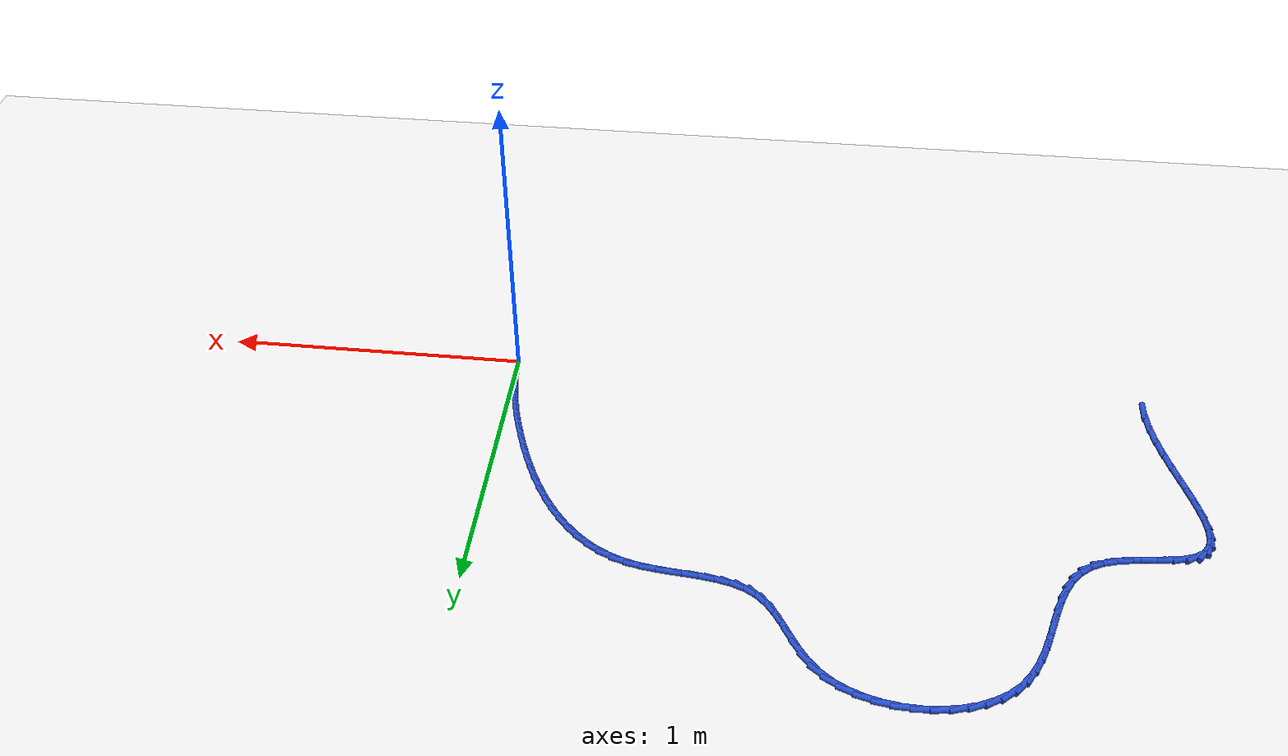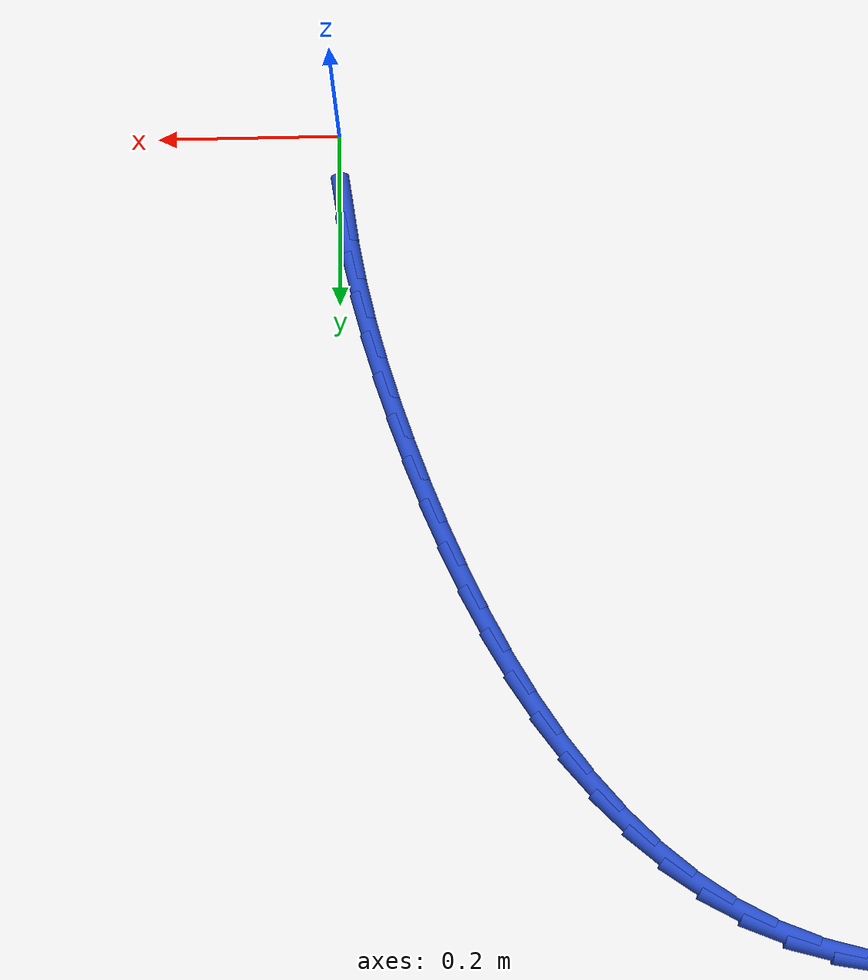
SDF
<sdf version="1.6">
 <world name="default">
  <model name="ground_plane">
   <static>1</static>
   <link name="link">
    <collision name="collision">
     <geometry><plane><normal>0 0 1</normal><size>100 100</size></plane></geometry>
     <surface><friction><ode><mu>100</mu><mu2>50</mu2></ode></friction></surface>
    </collision>
    <visual name="visual">
     <cast_shadows>0</cast_shadows>
     <geometry><plane><normal>0 0 1</normal><size>100 100</size></plane></geometry>
     <material>
      <script><uri>file://media/materials/scripts/gazebo.material</uri><name>Gazebo/WhiteGlow</name></script>
     </material>
    </visual>
   </link>
  </model>
  <model name="line">
   <link name="link_2">
    <pose>-0.005940966023274526 0.0924890745904151 0.01 0 1.57 -1.436435670266301</pose>
    <collision name="collision">
     <geometry><cylinder><radius>0.01</radius><length>0.08</length></cylinder></geometry>
    </collision>
    <visual name="visual">
     <material>
      <script><name>Gazebo/Blue</name><uri>file://media/materials/scripts/gazebo.material</uri></script>
     </material>
     <geometry><cylinder><radius>0.01</radius><length>0.08</length></cylinder></geometry>
    </visual>
   </link>
   <link name="link_3">
    <pose>-0.012134233433535868 0.13830571512713555 0.01 0 1.57 -1.3933267834648728</pose>
    <collision name="collision">
     <geometry><cylinder><radius>0.01</radius><length>0.08</length></cylinder></geometry>
    </collision>
    <visual name="visual">
     <material>
      <script><name>Gazebo/Blue</name><uri>file://media/materials/scripts/gazebo.material</uri></script>
     </material>
     <geometry><cylinder><radius>0.01</radius><length>0.08</length></cylinder></geometry>
    </visual>
   </link>
   <link name="link_4">
    <pose>-0.020326023642553544 0.18397894780960256 0.01 0 1.57 -1.3534551659874263</pose>
    <collision name="collision">
     <geometry><cylinder><radius>0.01</radius><length>0.08</length></cylinder></geometry>
    </collision>
    <visual name="visual">
     <material>
      <script><name>Gazebo/Blue</name><uri>file://media/materials/scripts/gazebo.material</uri></script>
     </material>
     <geometry><cylinder><radius>0.01</radius><length>0.08</length></cylinder></geometry>
    </visual>
   </link>
   <link name="link_5">
    <pose>-0.030403836550082778 0.22961516512636976 0.01 0 1.57 -1.3170866215379182</pose>
    <collision name="collision">
     <geometry><cylinder><radius>0.01</radius><length>0.08</length></cylinder></geometry>
    </collision>
    <visual name="visual">
     <material>
      <script><name>Gazebo/Blue</name><uri>file://media/materials/scripts/gazebo.material</uri></script>
     </material>
     <geometry><cylinder><radius>0.01</radius><length>0.08</length></cylinder></geometry>
    </visual>
   </link>
   <link name="link_6">
    <pose>-0.042255172055878795 0.27532075956599067 0.01 0 1.57 -1.2843870683193195</pose>
    <collision name="collision">
     <geometry><cylinder><radius>0.01</radius><length>0.08</length></cylinder></geometry>
    </collision>
    <visual name="visual">
     <material>
      <script><name>Gazebo/Blue</name><uri>file://media/materials/scripts/gazebo.material</uri></script>
     </material>
     <geometry><cylinder><radius>0.01</radius><length>0.08</length></cylinder></geometry>
    </visual>
   </link>
   <link name="link_7">
    <pose>-0.055767530059696785 0.32120212361701855 0.01 0 1.57 -1.255433673963761</pose>
    <collision name="collision">
     <geometry><cylinder><radius>0.01</radius><length>0.08</length></cylinder></geometry>
    </collision>
    <visual name="visual">
     <material>
      <script><name>Gazebo/Blue</name><uri>file://media/materials/scripts/gazebo.material</uri></script>
     </material>
     <geometry><cylinder><radius>0.01</radius><length>0.08</length></cylinder></geometry>
    </visual>
   </link>
   <link name="link_8">
    <pose>-0.07082841046129197 0.367365649768007 0.01 0 1.57 -1.2298542153299223</pose>
    <collision name="collision">
     <geometry><cylinder><radius>0.01</radius><length>0.08</length></cylinder></geometry>
    </collision>
    <visual name="visual">
     <material>
      <script><name>Gazebo/Blue</name><uri>file://media/materials/scripts/gazebo.material</uri></script>
     </material>
     <geometry><cylinder><radius>0.01</radius><length>0.08</length></cylinder></geometry>
    </visual>
   </link>
   <link name="link_9">
    <pose>-0.08733602795371681 0.41389255619519905 0.01 0 1.57 -1.2032316690330587</pose>
    <collision name="collision">
     <geometry><cylinder><radius>0.01</radius><length>0.08</length></cylinder></geometry>
    </collision>
    <visual name="visual">
     <material>
      <script><name>Gazebo/Blue</name><uri>file://media/materials/scripts/gazebo.material</uri></script>
     </material>
     <geometry><cylinder><radius>0.01</radius><length>0.08</length></cylinder></geometry>
    </visual>
   </link>
   <link name="link_10">
    <pose>-0.1053116979493797 0.4605748370208803 0.01 0 1.57 -1.1724911542365255</pose>
    <collision name="collision">
     <geometry><cylinder><radius>0.01</radius><length>0.08</length></cylinder></geometry>
    </collision>
    <visual name="visual">
     <material>
      <script><name>Gazebo/Blue</name><uri>file://media/materials/scripts/gazebo.material</uri></script>
     </material>
     <geometry><cylinder><radius>0.01</radius><length>0.08</length></cylinder></geometry>
    </visual>
   </link>
   <link name="link_11">
    <pose>-0.12485546845025954 0.5070195048428323 0.01 0 1.57 -1.137136139844849</pose>
    <collision name="collision">
     <geometry><cylinder><radius>0.01</radius><length>0.08</length></cylinder></geometry>
    </collision>
    <visual name="visual">
     <material>
      <script><name>Gazebo/Blue</name><uri>file://media/materials/scripts/gazebo.material</uri></script>
     </material>
     <geometry><cylinder><radius>0.01</radius><length>0.08</length></cylinder></geometry>
    </visual>
   </link>
   <link name="link_12">
    <pose>-0.14606866913526717 0.5528305609701929 0.01 0 1.57 -1.0966070510772625</pose>
    <collision name="collision">
     <geometry><cylinder><radius>0.01</radius><length>0.08</length></cylinder></geometry>
    </collision>
    <visual name="visual">
     <material>
      <script><name>Gazebo/Blue</name><uri>file://media/materials/scripts/gazebo.material</uri></script>
     </material>
     <geometry><cylinder><radius>0.01</radius><length>0.08</length></cylinder></geometry>
    </visual>
   </link>
   <link name="link_13">
    <pose>-0.16905262968331358 0.5976120067121005 0.01 0 1.57 -1.0502379953094667</pose>
    <collision name="collision">
     <geometry><cylinder><radius>0.01</radius><length>0.08</length></cylinder></geometry>
    </collision>
    <visual name="visual">
     <material>
      <script><name>Gazebo/Blue</name><uri>file://media/materials/scripts/gazebo.material</uri></script>
     </material>
     <geometry><cylinder><radius>0.01</radius><length>0.08</length></cylinder></geometry>
    </visual>
   </link>
   <link name="link_14">
    <pose>-0.19390867977330972 0.6409678433776929 0.01 0 1.57 -0.9972661018475963</pose>
    <collision name="collision">
     <geometry><cylinder><radius>0.01</radius><length>0.08</length></cylinder></geometry>
    </collision>
    <visual name="visual">
     <material>
      <script><name>Gazebo/Blue</name><uri>file://media/materials/scripts/gazebo.material</uri></script>
     </material>
     <geometry><cylinder><radius>0.01</radius><length>0.08</length></cylinder></geometry>
    </visual>
   </link>
   <link name="link_15">
    <pose>-0.22073814908416645 0.6825020722761085 0.01 0 1.57 -0.9368571966738959</pose>
    <collision name="collision">
     <geometry><cylinder><radius>0.01</radius><length>0.08</length></cylinder></geometry>
    </collision>
    <visual name="visual">
     <material>
      <script><name>Gazebo/Blue</name><uri>file://media/materials/scripts/gazebo.material</uri></script>
     </material>
     <geometry><cylinder><radius>0.01</radius><length>0.08</length></cylinder></geometry>
    </visual>
   </link>
   <link name="link_16">
    <pose>-0.24964236729479475 0.7218186947164852 0.01 0 1.57 -0.8681600796457231</pose>
    <collision name="collision">
     <geometry><cylinder><radius>0.01</radius><length>0.08</length></cylinder></geometry>
    </collision>
    <visual name="visual">
     <material>
      <script><name>Gazebo/Blue</name><uri>file://media/materials/scripts/gazebo.material</uri></script>
     </material>
     <geometry><cylinder><radius>0.01</radius><length>0.08</length></cylinder></geometry>
    </visual>
   </link>
   <link name="link_17">
    <pose>-0.2807226640841055 0.7585217120079611 0.01 0 1.57 -0.7904048748026672</pose>
    <collision name="collision">
     <geometry><cylinder><radius>0.01</radius><length>0.08</length></cylinder></geometry>
    </collision>
    <visual name="visual">
     <material>
      <script><name>Gazebo/Blue</name><uri>file://media/materials/scripts/gazebo.material</uri></script>
     </material>
     <geometry><cylinder><radius>0.01</radius><length>0.08</length></cylinder></geometry>
    </visual>
   </link>
   <link name="link_18">
    <pose>-0.3140803691310096 0.792215125459675 0.01 0 1.57 -0.7030600368776598</pose>
    <collision name="collision">
     <geometry><cylinder><radius>0.01</radius><length>0.08</length></cylinder></geometry>
    </collision>
    <visual name="visual">
     <material>
      <script><name>Gazebo/Blue</name><uri>file://media/materials/scripts/gazebo.material</uri></script>
     </material>
     <geometry><cylinder><radius>0.01</radius><length>0.08</length></cylinder></geometry>
    </visual>
   </link>
   <link name="link_19">
    <pose>-0.34981681211441806 0.822502936380764 0.01 0 1.57 -0.6060508326332041</pose>
    <collision name="collision">
     <geometry><cylinder><radius>0.01</radius><length>0.08</length></cylinder></geometry>
    </collision>
    <visual name="visual">
     <material>
      <script><name>Gazebo/Blue</name><uri>file://media/materials/scripts/gazebo.material</uri></script>
     </material>
     <geometry><cylinder><radius>0.01</radius><length>0.08</length></cylinder></geometry>
    </visual>
   </link>
   <link name="link_20">
    <pose>-0.3880333227132417 0.8489891460803671 0.01 0 1.57 -0.5000115362658203</pose>
    <collision name="collision">
     <geometry><cylinder><radius>0.01</radius><length>0.08</length></cylinder></geometry>
    </collision>
    <visual name="visual">
     <material>
      <script><name>Gazebo/Blue</name><uri>file://media/materials/scripts/gazebo.material</uri></script>
     </material>
     <geometry><cylinder><radius>0.01</radius><length>0.08</length></cylinder></geometry>
    </visual>
   </link>
   <link name="link_21">
    <pose>-0.42883123060639156 0.871277755867622 0.01 0 1.57 -0.3864945449638289</pose>
    <collision name="collision">
     <geometry><cylinder><radius>0.01</radius><length>0.08</length></cylinder></geometry>
    </collision>
    <visual name="visual">
     <material>
      <script><name>Gazebo/Blue</name><uri>file://media/materials/scripts/gazebo.material</uri></script>
     </material>
     <geometry><cylinder><radius>0.01</radius><length>0.08</length></cylinder></geometry>
    </visual>
   </link>
   <link name="link_22">
    <pose>-0.47231186547277854 0.888972767051667 0.01 0 1.57 -0.2700500714416034</pose>
    <collision name="collision">
     <geometry><cylinder><radius>0.01</radius><length>0.08</length></cylinder></geometry>
    </collision>
    <visual name="visual">
     <material>
      <script><name>Gazebo/Blue</name><uri>file://media/materials/scripts/gazebo.material</uri></script>
     </material>
     <geometry><cylinder><radius>0.01</radius><length>0.08</length></cylinder></geometry>
    </visual>
   </link>
   <link name="link_23">
    <pose>-0.5185269437244302 0.9017656572932711 0.01 0 1.57 -0.17718210906850276</pose>
    <collision name="collision">
     <geometry><cylinder><radius>0.01</radius><length>0.08</length></cylinder></geometry>
    </collision>
    <visual name="visual">
     <material>
      <script><name>Gazebo/Blue</name><uri>file://media/materials/scripts/gazebo.material</uri></script>
     </material>
     <geometry><cylinder><radius>0.01</radius><length>0.08</length></cylinder></geometry>
    </visual>
   </link>
   <link name="link_24">
    <pose>-0.5669145010639884 0.9104299243034026 0.01 0 1.57 -0.12120529322183834</pose>
    <collision name="collision">
     <geometry><cylinder><radius>0.01</radius><length>0.08</length></cylinder></geometry>
    </collision>
    <visual name="visual">
     <material>
      <script><name>Gazebo/Blue</name><uri>file://media/materials/scripts/gazebo.material</uri></script>
     </material>
     <geometry><cylinder><radius>0.01</radius><length>0.08</length></cylinder></geometry>
    </visual>
   </link>
   <link name="link_25">
    <pose>-0.6164983800525924 0.9164693564423926 0.01 0 1.57 -0.09872338030837678</pose>
    <collision name="collision">
     <geometry><cylinder><radius>0.01</radius><length>0.08</length></cylinder></geometry>
    </collision>
    <visual name="visual">
     <material>
      <script><name>Gazebo/Blue</name><uri>file://media/materials/scripts/gazebo.material</uri></script>
     </material>
     <geometry><cylinder><radius>0.01</radius><length>0.08</length></cylinder></geometry>
    </visual>
   </link>
   <link name="link_26">
    <pose>-0.6662946507593727 0.9214014462526762 0.01 0 1.57 -0.10854202803596015</pose>
    <collision name="collision">
     <geometry><cylinder><radius>0.01</radius><length>0.08</length></cylinder></geometry>
    </collision>
    <visual name="visual">
     <material>
      <script><name>Gazebo/Blue</name><uri>file://media/materials/scripts/gazebo.material</uri></script>
     </material>
     <geometry><cylinder><radius>0.01</radius><length>0.08</length></cylinder></geometry>
    </visual>
   </link>
   <link name="link_27">
    <pose>-0.7153193832534586 0.9267436862766889 0.01 0 1.57 -0.15260155313605617</pose>
    <collision name="collision">
     <geometry><cylinder><radius>0.01</radius><length>0.08</length></cylinder></geometry>
    </collision>
    <visual name="visual">
     <material>
      <script><name>Gazebo/Blue</name><uri>file://media/materials/scripts/gazebo.material</uri></script>
     </material>
     <geometry><cylinder><radius>0.01</radius><length>0.08</length></cylinder></geometry>
    </visual>
   </link>
   <link name="link_28">
    <pose>-0.7625886476039796 0.9340135690568666 0.01 0 1.57 -0.2361362609698178</pose>
    <collision name="collision">
     <geometry><cylinder><radius>0.01</radius><length>0.08</length></cylinder></geometry>
    </collision>
    <visual name="visual">
     <material>
      <script><name>Gazebo/Blue</name><uri>file://media/materials/scripts/gazebo.material</uri></script>
     </material>
     <geometry><cylinder><radius>0.01</radius><length>0.08</length></cylinder></geometry>
    </visual>
   </link>
   <link name="link_29">
    <pose>-0.8071185138800653 0.9447285871356441 0.01 0 1.57 -0.3668071000280431</pose>
    <collision name="collision">
     <geometry><cylinder><radius>0.01</radius><length>0.08</length></cylinder></geometry>
    </collision>
    <visual name="visual">
     <material>
      <script><name>Gazebo/Blue</name><uri>file://media/materials/scripts/gazebo.material</uri></script>
     </material>
     <geometry><cylinder><radius>0.01</radius><length>0.08</length></cylinder></geometry>
    </visual>
   </link>
   <link name="link_30">
    <pose>-0.8479250521508455 0.9604062330554574 0.01 0 1.57 -0.5505053773676107</pose>
    <collision name="collision">
     <geometry><cylinder><radius>0.01</radius><length>0.08</length></cylinder></geometry>
    </collision>
    <visual name="visual">
     <material>
      <script><name>Gazebo/Blue</name><uri>file://media/materials/scripts/gazebo.material</uri></script>
     </material>
     <geometry><cylinder><radius>0.01</radius><length>0.08</length></cylinder></geometry>
    </visual>
   </link>
   <link name="link_31">
    <pose>-0.8840243324854496 0.9825639993587416 0.01 0 1.57 -0.7664154667194171</pose>
    <collision name="collision">
     <geometry><cylinder><radius>0.01</radius><length>0.08</length></cylinder></geometry>
    </collision>
    <visual name="visual">
     <material>
      <script><name>Gazebo/Blue</name><uri>file://media/materials/scripts/gazebo.material</uri></script>
     </material>
     <geometry><cylinder><radius>0.01</radius><length>0.08</length></cylinder></geometry>
    </visual>
   </link>
   <link name="link_32">
    <pose>-0.9148237621297316 1.0122157644552476 0.01 0 1.57 -0.9291367369747572</pose>
    <collision name="collision">
     <geometry><cylinder><radius>0.01</radius><length>0.08</length></cylinder></geometry>
    </collision>
    <visual name="visual">
     <material>
      <script><name>Gazebo/Blue</name><uri>file://media/materials/scripts/gazebo.material</uri></script>
     </material>
     <geometry><cylinder><radius>0.01</radius><length>0.08</length></cylinder></geometry>
    </visual>
   </link>
   <link name="link_33">
    <pose>-0.9415676746747503 1.0480114553512532 0.01 0 1.57 -1.0206057435527836</pose>
    <collision name="collision">
     <geometry><cylinder><radius>0.01</radius><length>0.08</length></cylinder></geometry>
    </collision>
    <visual name="visual">
     <material>
      <script><name>Gazebo/Blue</name><uri>file://media/materials/scripts/gazebo.material</uri></script>
     </material>
     <geometry><cylinder><radius>0.01</radius><length>0.08</length></cylinder></geometry>
    </visual>
   </link>
   <link name="link_34">
    <pose>-0.9660389113272696 1.087907990409961 0.01 0 1.57 -1.0515129740956561</pose>
    <collision name="collision">
     <geometry><cylinder><radius>0.01</radius><length>0.08</length></cylinder></geometry>
    </collision>
    <visual name="visual">
     <material>
      <script><name>Gazebo/Blue</name><uri>file://media/materials/scripts/gazebo.material</uri></script>
     </material>
     <geometry><cylinder><radius>0.01</radius><length>0.08</length></cylinder></geometry>
    </visual>
   </link>
   <link name="link_35">
    <pose>-0.9900203828883766 1.1298621984332236 0.01 0 1.57 -1.028742210296648</pose>
    <collision name="collision">
     <geometry><cylinder><radius>0.01</radius><length>0.08</length></cylinder></geometry>
    </collision>
    <visual name="visual">
     <material>
      <script><name>Gazebo/Blue</name><uri>file://media/materials/scripts/gazebo.material</uri></script>
     </material>
     <geometry><cylinder><radius>0.01</radius><length>0.08</length></cylinder></geometry>
    </visual>
   </link>
   <link name="link_36">
    <pose>-1.0152950001591592 1.1718309082228957 0.01 0 1.57 -0.9535028868978923</pose>
    <collision name="collision">
     <geometry><cylinder><radius>0.01</radius><length>0.08</length></cylinder></geometry>
    </collision>
    <visual name="visual">
     <material>
      <script><name>Gazebo/Blue</name><uri>file://media/materials/scripts/gazebo.material</uri></script>
     </material>
     <geometry><cylinder><radius>0.01</radius><length>0.08</length></cylinder></geometry>
    </visual>
   </link>
   <link name="link_37">
    <pose>-1.0436456739407047 1.2117709485808306 0.01 0 1.57 -0.8239366933005705</pose>
    <collision name="collision">
     <geometry><cylinder><radius>0.01</radius><length>0.08</length></cylinder></geometry>
    </collision>
    <visual name="visual">
     <material>
      <script><name>Gazebo/Blue</name><uri>file://media/materials/scripts/gazebo.material</uri></script>
     </material>
     <geometry><cylinder><radius>0.01</radius><length>0.08</length></cylinder></geometry>
    </visual>
   </link>
   <link name="link_38">
    <pose>-1.0768524610542503 1.2476411812154706 0.01 0 1.57 -0.6598890937508796</pose>
    <collision name="collision">
     <geometry><cylinder><radius>0.01</radius><length>0.08</length></cylinder></geometry>
    </collision>
    <visual name="visual">
     <material>
      <script><name>Gazebo/Blue</name><uri>file://media/materials/scripts/gazebo.material</uri></script>
     </material>
     <geometry><cylinder><radius>0.01</radius><length>0.08</length></cylinder></geometry>
    </visual>
   </link>
   <link name="link_39">
    <pose>-1.1159186929473652 1.2779537338752536 0.01 0 1.57 -0.5082415198840071</pose>
    <collision name="collision">
     <geometry><cylinder><radius>0.01</radius><length>0.08</length></cylinder></geometry>
    </collision>
    <visual name="visual">
     <material>
      <script><name>Gazebo/Blue</name><uri>file://media/materials/scripts/gazebo.material</uri></script>
     </material>
     <geometry><cylinder><radius>0.01</radius><length>0.08</length></cylinder></geometry>
    </visual>
   </link>
   <link name="link_40">
    <pose>-1.1600216921079205 1.302521411202123 0.01 0 1.57 -0.37331695636103357</pose>
    <collision name="collision">
     <geometry><cylinder><radius>0.01</radius><length>0.08</length></cylinder></geometry>
    </collision>
    <visual name="visual">
     <material>
      <script><name>Gazebo/Blue</name><uri>file://media/materials/scripts/gazebo.material</uri></script>
     </material>
     <geometry><cylinder><radius>0.01</radius><length>0.08</length></cylinder></geometry>
    </visual>
   </link>
   <link name="link_41">
    <pose>-1.208076617290044 1.3213437586034407 0.01 0 1.57 -0.2513644970746795</pose>
    <collision name="collision">
     <geometry><cylinder><radius>0.01</radius><length>0.08</length></cylinder></geometry>
    </collision>
    <visual name="visual">
     <material>
      <script><name>Gazebo/Blue</name><uri>file://media/materials/scripts/gazebo.material</uri></script>
     </material>
     <geometry><cylinder><radius>0.01</radius><length>0.08</length></cylinder></geometry>
    </visual>
   </link>
   <link name="link_42">
    <pose>-1.2589986272478628 1.3344203214865673 0.01 0 1.57 -0.13819753733453533</pose>
    <collision name="collision">
     <geometry><cylinder><radius>0.01</radius><length>0.08</length></cylinder></geometry>
    </collision>
    <visual name="visual">
     <material>
      <script><name>Gazebo/Blue</name><uri>file://media/materials/scripts/gazebo.material</uri></script>
     </material>
     <geometry><cylinder><radius>0.01</radius><length>0.08</length></cylinder></geometry>
    </visual>
   </link>
   <link name="link_43">
    <pose>-1.3117028807355051 1.3417506452588648 0.01 0 1.57 -0.02964638574633757</pose>
    <collision name="collision">
     <geometry><cylinder><radius>0.01</radius><length>0.08</length></cylinder></geometry>
    </collision>
    <visual name="visual">
     <material>
      <script><name>Gazebo/Blue</name><uri>file://media/materials/scripts/gazebo.material</uri></script>
     </material>
     <geometry><cylinder><radius>0.01</radius><length>0.08</length></cylinder></geometry>
    </visual>
   </link>
   <link name="link_44">
    <pose>-1.3651045365070988 1.3433342753276944 0.01 0 1.57 0.07837500926084524</pose>
    <collision name="collision">
     <geometry><cylinder><radius>0.01</radius><length>0.08</length></cylinder></geometry>
    </collision>
    <visual name="visual">
     <material>
      <script><name>Gazebo/Blue</name><uri>file://media/materials/scripts/gazebo.material</uri></script>
     </material>
     <geometry><cylinder><radius>0.01</radius><length>0.08</length></cylinder></geometry>
    </visual>
   </link>
   <link name="link_45">
    <pose>-1.4181187533167712 1.3391707571004179 0.01 0 1.57 0.1899735114983352</pose>
    <collision name="collision">
     <geometry><cylinder><radius>0.01</radius><length>0.08</length></cylinder></geometry>
    </collision>
    <visual name="visual">
     <material>
      <script><name>Gazebo/Blue</name><uri>file://media/materials/scripts/gazebo.material</uri></script>
     </material>
     <geometry><cylinder><radius>0.01</radius><length>0.08</length></cylinder></geometry>
    </visual>
   </link>
   <link name="link_46">
    <pose>-1.4696606899186506 1.3292596359843967 0.01 0 1.57 0.30940732407456734</pose>
    <collision name="collision">
     <geometry><cylinder><radius>0.01</radius><length>0.08</length></cylinder></geometry>
    </collision>
    <visual name="visual">
     <material>
      <script><name>Gazebo/Blue</name><uri>file://media/materials/scripts/gazebo.material</uri></script>
     </material>
     <geometry><cylinder><radius>0.01</radius><length>0.08</length></cylinder></geometry>
    </visual>
   </link>
   <link name="link_47">
    <pose>-1.518645505066864 1.3136004573869922 0.01 0 1.57 0.4411035251607573</pose>
    <collision name="collision">
     <geometry><cylinder><radius>0.01</radius><length>0.08</length></cylinder></geometry>
    </collision>
    <visual name="visual">
     <material>
      <script><name>Gazebo/Blue</name><uri>file://media/materials/scripts/gazebo.material</uri></script>
     </material>
     <geometry><cylinder><radius>0.01</radius><length>0.08</length></cylinder></geometry>
    </visual>
   </link>
   <link name="link_48">
    <pose>-1.5639883575155396 1.2921927667155657 0.01 0 1.57 0.5893529265007421</pose>
    <collision name="collision">
     <geometry><cylinder><radius>0.01</radius><length>0.08</length></cylinder></geometry>
    </collision>
    <visual name="visual">
     <material>
      <script><name>Gazebo/Blue</name><uri>file://media/materials/scripts/gazebo.material</uri></script>
     </material>
     <geometry><cylinder><radius>0.01</radius><length>0.08</length></cylinder></geometry>
    </visual>
   </link>
   <link name="link_49">
    <pose>-1.604604406018804 1.2650361093774787 0.01 0 1.57 0.7573602692474132</pose>
    <collision name="collision">
     <geometry><cylinder><radius>0.01</radius><length>0.08</length></cylinder></geometry>
    </collision>
    <visual name="visual">
     <material>
      <script><name>Gazebo/Blue</name><uri>file://media/materials/scripts/gazebo.material</uri></script>
     </material>
     <geometry><cylinder><radius>0.01</radius><length>0.08</length></cylinder></geometry>
    </visual>
   </link>
   <link name="link_50">
    <pose>-1.6394092319172884 1.232130246243419 0.01 0 1.57 0.933192259167531</pose>
    <collision name="collision">
     <geometry><cylinder><radius>0.01</radius><length>0.08</length></cylinder></geometry>
    </collision>
    <visual name="visual">
     <material>
      <script><name>Gazebo/Blue</name><uri>file://media/materials/scripts/gazebo.material</uri></script>
     </material>
     <geometry><cylinder><radius>0.01</radius><length>0.08</length></cylinder></geometry>
    </visual>
   </link>
   <link name="link_51">
    <pose>-1.66784659632492 1.1937442401378657 0.01 0 1.57 1.0763899878214525</pose>
    <collision name="collision">
     <geometry><cylinder><radius>0.01</radius><length>0.08</length></cylinder></geometry>
    </collision>
    <visual name="visual">
     <material>
      <script><name>Gazebo/Blue</name><uri>file://media/materials/scripts/gazebo.material</uri></script>
     </material>
     <geometry><cylinder><radius>0.01</radius><length>0.08</length></cylinder></geometry>
    </visual>
   </link>
   <link name="link_52">
    <pose>-1.6909195380726676 1.1509421796642714 0.01 0 1.57 1.1791969337913202</pose>
    <collision name="collision">
     <geometry><cylinder><radius>0.01</radius><length>0.08</length></cylinder></geometry>
    </collision>
    <visual name="visual">
     <material>
      <script><name>Gazebo/Blue</name><uri>file://media/materials/scripts/gazebo.material</uri></script>
     </material>
     <geometry><cylinder><radius>0.01</radius><length>0.08</length></cylinder></geometry>
    </visual>
   </link>
   <link name="link_53">
    <pose>-1.7099174394261816 1.104934150774555 0.01 0 1.57 1.2450962072886174</pose>
    <collision name="collision">
     <geometry><cylinder><radius>0.01</radius><length>0.08</length></cylinder></geometry>
    </collision>
    <visual name="visual">
     <material>
      <script><name>Gazebo/Blue</name><uri>file://media/materials/scripts/gazebo.material</uri></script>
     </material>
     <geometry><cylinder><radius>0.01</radius><length>0.08</length></cylinder></geometry>
    </visual>
   </link>
   <link name="link_54">
    <pose>-1.7261296826511143 1.0569302394206368 0.01 0 1.57 1.2778536627604544</pose>
    <collision name="collision">
     <geometry><cylinder><radius>0.01</radius><length>0.08</length></cylinder></geometry>
    </collision>
    <visual name="visual">
     <material>
      <script><name>Gazebo/Blue</name><uri>file://media/materials/scripts/gazebo.material</uri></script>
     </material>
     <geometry><cylinder><radius>0.01</radius><length>0.08</length></cylinder></geometry>
    </visual>
   </link>
   <link name="link_55">
    <pose>-1.7408456500131162 1.008140531554436 0.01 0 1.57 1.279349998605101</pose>
    <collision name="collision">
     <geometry><cylinder><radius>0.01</radius><length>0.08</length></cylinder></geometry>
    </collision>
    <visual name="visual">
     <material>
      <script><name>Gazebo/Blue</name><uri>file://media/materials/scripts/gazebo.material</uri></script>
     </material>
     <geometry><cylinder><radius>0.01</radius><length>0.08</length></cylinder></geometry>
    </visual>
   </link>
   <link name="link_56">
    <pose>-1.7553547237778397 0.959775113127872 0.01 0 1.57 1.2487656148121244</pose>
    <collision name="collision">
     <geometry><cylinder><radius>0.01</radius><length>0.08</length></cylinder></geometry>
    </collision>
    <visual name="visual">
     <material>
      <script><name>Gazebo/Blue</name><uri>file://media/materials/scripts/gazebo.material</uri></script>
     </material>
     <geometry><cylinder><radius>0.01</radius><length>0.08</length></cylinder></geometry>
    </visual>
   </link>
   <link name="link_57">
    <pose>-1.770946286210935 0.9130440700928651 0.01 0 1.57 1.1822857140928773</pose>
    <collision name="collision">
     <geometry><cylinder><radius>0.01</radius><length>0.08</length></cylinder></geometry>
    </collision>
    <visual name="visual">
     <material>
      <script><name>Gazebo/Blue</name><uri>file://media/materials/scripts/gazebo.material</uri></script>
     </material>
     <geometry><cylinder><radius>0.01</radius><length>0.08</length></cylinder></geometry>
    </visual>
   </link>
   <link name="link_58">
    <pose>-1.7889097195780548 0.8691574884013341 0.01 0 1.57 1.0734229308855177</pose>
    <collision name="collision">
     <geometry><cylinder><radius>0.01</radius><length>0.08</length></cylinder></geometry>
    </collision>
    <visual name="visual">
     <material>
      <script><name>Gazebo/Blue</name><uri>file://media/materials/scripts/gazebo.material</uri></script>
     </material>
     <geometry><cylinder><radius>0.01</radius><length>0.08</length></cylinder></geometry>
    </visual>
   </link>
   <link name="link_59">
    <pose>-1.8105344061448496 0.8293254540051996 0.01 0 1.57 0.9153731338447192</pose>
    <collision name="collision">
     <geometry><cylinder><radius>0.01</radius><length>0.08</length></cylinder></geometry>
    </collision>
    <visual name="visual">
     <material>
      <script><name>Gazebo/Blue</name><uri>file://media/materials/scripts/gazebo.material</uri></script>
     </material>
     <geometry><cylinder><radius>0.01</radius><length>0.08</length></cylinder></geometry>
    </visual>
   </link>
   <link name="link_60">
    <pose>-1.837109728176971 0.7947580528563803 0.01 0 1.57 0.7080154581325362</pose>
    <collision name="collision">
     <geometry><cylinder><radius>0.01</radius><length>0.08</length></cylinder></geometry>
    </collision>
    <visual name="visual">
     <material>
      <script><name>Gazebo/Blue</name><uri>file://media/materials/scripts/gazebo.material</uri></script>
     </material>
     <geometry><cylinder><radius>0.01</radius><length>0.08</length></cylinder></geometry>
    </visual>
   </link>
   <link name="link_61">
    <pose>-1.8699250679400703 0.7666653709067959 0.01 0 1.57 0.47150130983645266</pose>
    <collision name="collision">
     <geometry><cylinder><radius>0.01</radius><length>0.08</length></cylinder></geometry>
    </collision>
    <visual name="visual">
     <material>
      <script><name>Gazebo/Blue</name><uri>file://media/materials/scripts/gazebo.material</uri></script>
     </material>
     <geometry><cylinder><radius>0.01</radius><length>0.08</length></cylinder></geometry>
    </visual>
   </link>
   <link name="link_62">
    <pose>-1.9101500622862586 0.7461564149082507 0.01 0 1.57 0.28336937954209</pose>
    <collision name="collision">
     <geometry><cylinder><radius>0.01</radius><length>0.08</length></cylinder></geometry>
    </collision>
    <visual name="visual">
     <material>
      <script><name>Gazebo/Blue</name><uri>file://media/materials/scripts/gazebo.material</uri></script>
     </material>
     <geometry><cylinder><radius>0.01</radius><length>0.08</length></cylinder></geometry>
    </visual>
   </link>
   <link name="link_63">
    <pose>-1.9568440498897803 0.732558851972728 0.01 0 1.57 0.1743750322196133</pose>
    <collision name="collision">
     <geometry><cylinder><radius>0.01</radius><length>0.08</length></cylinder></geometry>
    </collision>
    <visual name="visual">
     <material>
      <script><name>Gazebo/Blue</name><uri>file://media/materials/scripts/gazebo.material</uri></script>
     </material>
     <geometry><cylinder><radius>0.01</radius><length>0.08</length></cylinder></geometry>
    </visual>
   </link>
   <link name="link_64">
    <pose>-2.007261770244827 0.7236770554487428 0.01 0 1.57 0.12422981429136444</pose>
    <collision name="collision">
     <geometry><cylinder><radius>0.01</radius><length>0.08</length></cylinder></geometry>
    </collision>
    <visual name="visual">
     <material>
      <script><name>Gazebo/Blue</name><uri>file://media/materials/scripts/gazebo.material</uri></script>
     </material>
     <geometry><cylinder><radius>0.01</radius><length>0.08</length></cylinder></geometry>
    </visual>
   </link>
   <link name="link_65">
    <pose>-2.0585998269771535 0.717266325180396 0.01 0 1.57 0.12440456002004267</pose>
    <collision name="collision">
     <geometry><cylinder><radius>0.01</radius><length>0.08</length></cylinder></geometry>
    </collision>
    <visual name="visual">
     <material>
      <script><name>Gazebo/Blue</name><uri>file://media/materials/scripts/gazebo.material</uri></script>
     </material>
     <geometry><cylinder><radius>0.01</radius><length>0.08</length></cylinder></geometry>
    </visual>
   </link>
   <link name="link_66">
    <pose>-2.1080548237125134 0.7110819610117876 0.01 0 1.57 0.18121458184681508</pose>
    <collision name="collision">
     <geometry><cylinder><radius>0.01</radius><length>0.08</length></cylinder></geometry>
    </collision>
    <visual name="visual">
     <material>
      <script><name>Gazebo/Blue</name><uri>file://media/materials/scripts/gazebo.material</uri></script>
     </material>
     <geometry><cylinder><radius>0.01</radius><length>0.08</length></cylinder></geometry>
    </visual>
   </link>
   <link name="link_67">
    <pose>-2.1528233640766596 0.7028792627870186 0.01 0 1.57 0.32270395700530535</pose>
    <collision name="collision">
     <geometry><cylinder><radius>0.01</radius><length>0.08</length></cylinder></geometry>
    </collision>
    <visual name="visual">
     <material>
      <script><name>Gazebo/Blue</name><uri>file://media/materials/scripts/gazebo.material</uri></script>
     </material>
     <geometry><cylinder><radius>0.01</radius><length>0.08</length></cylinder></geometry>
    </visual>
   </link>
   <link name="link_68">
    <pose>-2.190102051695347 0.690413530350189 0.01 0 1.57 0.6031887446301488</pose>
    <collision name="collision">
     <geometry><cylinder><radius>0.01</radius><length>0.08</length></cylinder></geometry>
    </collision>
    <visual name="visual">
     <material>
      <script><name>Gazebo/Blue</name><uri>file://media/materials/scripts/gazebo.material</uri></script>
     </material>
     <geometry><cylinder><radius>0.01</radius><length>0.08</length></cylinder></geometry>
    </visual>
   </link>
   <link name="link_69">
    <pose>-2.21736404856263 0.671634696112288 0.01 0 1.57 0.9758646201783951</pose>
    <collision name="collision">
     <geometry><cylinder><radius>0.01</radius><length>0.08</length></cylinder></geometry>
    </collision>
    <visual name="visual">
     <material>
      <script><name>Gazebo/Blue</name><uri>file://media/materials/scripts/gazebo.material</uri></script>
     </material>
     <geometry><cylinder><radius>0.01</radius><length>0.08</length></cylinder></geometry>
    </visual>
   </link>
   <link name="link_70">
    <pose>-2.234554395773822 0.6462323186524457 0.01 0 1.57 1.3106225587837579</pose>
    <collision name="collision">
     <geometry><cylinder><radius>0.01</radius><length>0.08</length></cylinder></geometry>
    </collision>
    <visual name="visual">
     <material>
      <script><name>Gazebo/Blue</name><uri>file://media/materials/scripts/gazebo.material</uri></script>
     </material>
     <geometry><cylinder><radius>0.01</radius><length>0.08</length></cylinder></geometry>
    </visual>
   </link>
   <link name="link_71">
    <pose>-2.242918887977702 0.6148113835699703 0.01 0 1.57 1.5491834731092846</pose>
    <collision name="collision">
     <geometry><cylinder><radius>0.01</radius><length>0.08</length></cylinder></geometry>
    </collision>
    <visual name="visual">
     <material>
      <script><name>Gazebo/Blue</name><uri>file://media/materials/scripts/gazebo.material</uri></script>
     </material>
     <geometry><cylinder><radius>0.01</radius><length>0.08</length></cylinder></geometry>
    </visual>
   </link>
   <link name="link_72">
    <pose>-2.2437149340850526 0.5779850501948754 0.01 0 1.57 -1.4390511402880308</pose>
    <collision name="collision">
     <geometry><cylinder><radius>0.01</radius><length>0.08</length></cylinder></geometry>
    </collision>
    <visual name="visual">
     <material>
      <script><name>Gazebo/Blue</name><uri>file://media/materials/scripts/gazebo.material</uri></script>
     </material>
     <geometry><cylinder><radius>0.01</radius><length>0.08</length></cylinder></geometry>
    </visual>
   </link>
   <link name="link_73">
    <pose>-2.238199943006655 0.5363664778571741 0.01 0 1.57 -1.343998920859879</pose>
    <collision name="collision">
     <geometry><cylinder><radius>0.01</radius><length>0.08</length></cylinder></geometry>
    </collision>
    <visual name="visual">
     <material>
      <script><name>Gazebo/Blue</name><uri>file://media/materials/scripts/gazebo.material</uri></script>
     </material>
     <geometry><cylinder><radius>0.01</radius><length>0.08</length></cylinder></geometry>
    </visual>
   </link>
   <link name="link_74">
    <pose>-2.2276313236532923 0.49056882588687967 0.01 0 1.57 -1.2876159957766162</pose>
    <collision name="collision">
     <geometry><cylinder><radius>0.01</radius><length>0.08</length></cylinder></geometry>
    </collision>
    <visual name="visual">
     <material>
      <script><name>Gazebo/Blue</name><uri>file://media/materials/scripts/gazebo.material</uri></script>
     </material>
     <geometry><cylinder><radius>0.01</radius><length>0.08</length></cylinder></geometry>
    </visual>
   </link>
   <link name="link_75">
    <pose>-2.213266484935749 0.4412052536140056 0.01 0 1.57 -1.2582796846488298</pose>
    <collision name="collision">
     <geometry><cylinder><radius>0.01</radius><length>0.08</length></cylinder></geometry>
    </collision>
    <visual name="visual">
     <material>
      <script><name>Gazebo/Blue</name><uri>file://media/materials/scripts/gazebo.material</uri></script>
     </material>
     <geometry><cylinder><radius>0.01</radius><length>0.08</length></cylinder></geometry>
    </visual>
   </link>
   <link name="link_76">
    <pose>-2.196362835764805 0.38888892036856443 0.01 0 1.57 -1.2495990590147343</pose>
    <collision name="collision">
     <geometry><cylinder><radius>0.01</radius><length>0.08</length></cylinder></geometry>
    </collision>
    <visual name="visual">
     <material>
      <script><name>Gazebo/Blue</name><uri>file://media/materials/scripts/gazebo.material</uri></script>
     </material>
     <geometry><cylinder><radius>0.01</radius><length>0.08</length></cylinder></geometry>
    </visual>
   </link>
   <link name="link_77">
    <pose>-2.1781777850512465 0.3342329854805706 0.01 0 1.57 -1.2584140028050417</pose>
    <collision name="collision">
     <geometry><cylinder><radius>0.01</radius><length>0.08</length></cylinder></geometry>
    </collision>
    <visual name="visual">
     <material>
      <script><name>Gazebo/Blue</name><uri>file://media/materials/scripts/gazebo.material</uri></script>
     </material>
     <geometry><cylinder><radius>0.01</radius><length>0.08</length></cylinder></geometry>
    </visual>
   </link>
   <link name="link_78">
    <pose>-2.159968741705854 0.2778506082800363 0.01 0 1.57 -1.2837024730754738</pose>
    <collision name="collision">
     <geometry><cylinder><radius>0.01</radius><length>0.08</length></cylinder></geometry>
    </collision>
    <visual name="visual">
     <material>
      <script><name>Gazebo/Blue</name><uri>file://media/materials/scripts/gazebo.material</uri></script>
     </material>
     <geometry><cylinder><radius>0.01</radius><length>0.08</length></cylinder></geometry>
    </visual>
   </link>
   <link name="link_79">
    <pose>-2.1429931146394114 0.22035494809697587 0.01 0 1.57 -1.3260472120968134</pose>
    <collision name="collision">
     <geometry><cylinder><radius>0.01</radius><length>0.08</length></cylinder></geometry>
    </collision>
    <visual name="visual">
     <material>
      <script><name>Gazebo/Blue</name><uri>file://media/materials/scripts/gazebo.material</uri></script>
     </material>
     <geometry><cylinder><radius>0.01</radius><length>0.08</length></cylinder></geometry>
    </visual>
   </link>
   <link name="link_80">
    <pose>-2.1285083127627 0.16235916426140207 0.01 0 1.57 -1.3873925406728749</pose>
    <collision name="collision">
     <geometry><cylinder><radius>0.01</radius><length>0.08</length></cylinder></geometry>
    </collision>
    <visual name="visual">
     <material>
      <script><name>Gazebo/Blue</name><uri>file://media/materials/scripts/gazebo.material</uri></script>
     </material>
     <geometry><cylinder><radius>0.01</radius><length>0.08</length></cylinder></geometry>
    </visual>
   </link>
   <link name="link_81">
    <pose>-2.1177717449865034 0.10447641610332817 0.01 0 1.57 -1.4708559587658965</pose>
    <collision name="collision">
     <geometry><cylinder><radius>0.01</radius><length>0.08</length></cylinder></geometry>
    </collision>
    <visual name="visual">
     <material>
      <script><name>Gazebo/Blue</name><uri>file://media/materials/scripts/gazebo.material</uri></script>
     </material>
     <geometry><cylinder><radius>0.01</radius><length>0.08</length></cylinder></geometry>
    </visual>
   </link>
   <link name="link_82">
    <pose>-2.1120403926222457 0.04731975329585929 0.01 0 1.57 1.57039063524219</pose>
    <collision name="collision">
     <geometry><cylinder><radius>0.01</radius><length>0.08</length></cylinder></geometry>
    </collision>
    <visual name="visual">
     <material>
      <script><name>Gazebo/Blue</name><uri>file://media/materials/scripts/gazebo.material</uri></script>
     </material>
     <geometry><cylinder><radius>0.01</radius><length>0.08</length></cylinder></geometry>
    </visual>
   </link>
  </model>
 </world>
</sdf>
